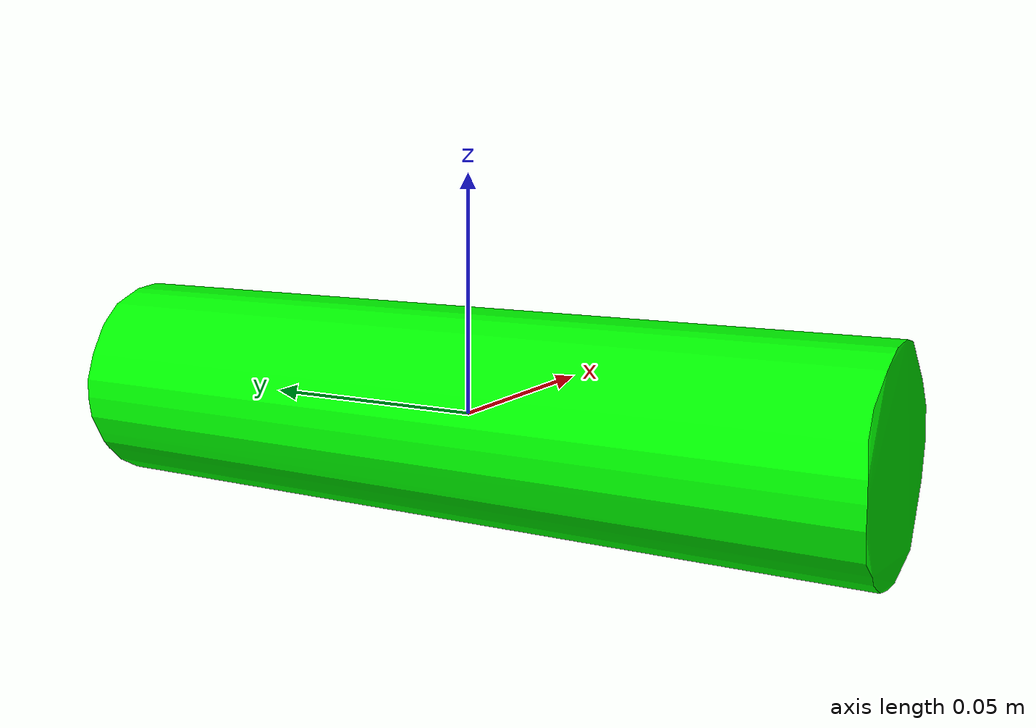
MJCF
<mujoco model="stick">
  <asset>
    <mesh file="meshes/stick_meshes/stick_mesh_part_0.stl" name="stick_mesh_part_0" scale="0.75 1.0 0.75"/>
  </asset>
  <worldbody>
    <body>
      <body name="collision">
        <geom condim="4" density="100" friction="1.5 0.3 0.1" group="1" mesh="stick_mesh_part_0" pos="0 0 0" rgba="0 1 0 1" solimp="0.998 0.998 0.001" solref="0.002 1" type="mesh"/>
      </body>
      <body name="visual">
        <geom conaffinity="0" contype="0" group="0" mass="0.0001" mesh="stick_mesh_part_0" pos="0 0 0" rgba="0 1 0 1" type="mesh"/>
      </body>
      <site name="bottom_site" pos="0 0 -0.06" rgba="0 0 0 0" size="0.005"/>
      <site name="top_site" pos="0 0 0.04" rgba="0 0 0 0" size="0.005"/>
      <site name="horizontal_radius_site" pos="0.025 0.025 0" rgba="0 0 0 0" size="0.005"/>
    </body>
  </worldbody>
</mujoco>
